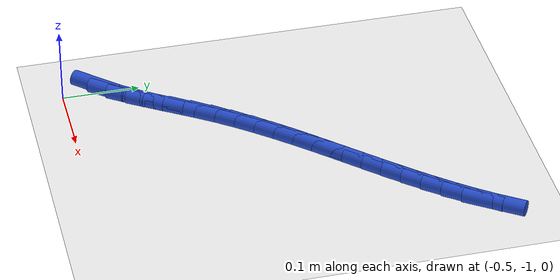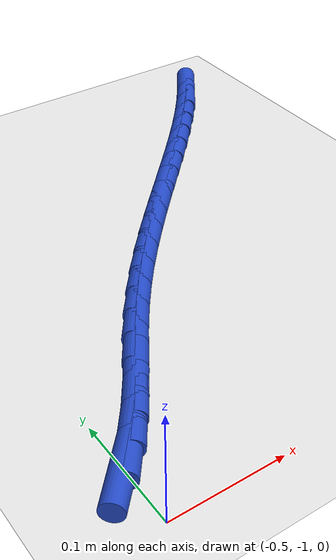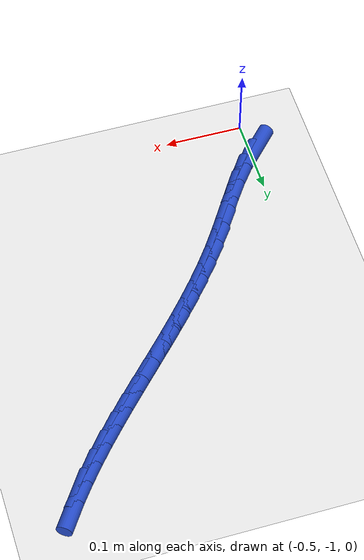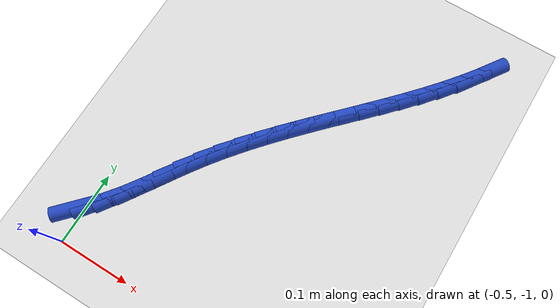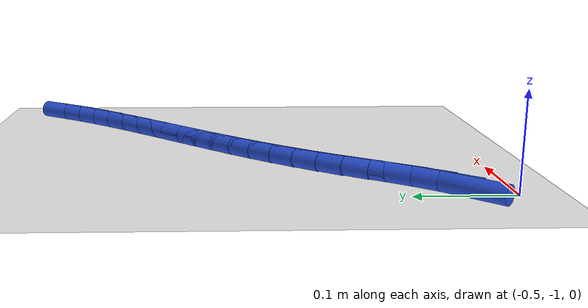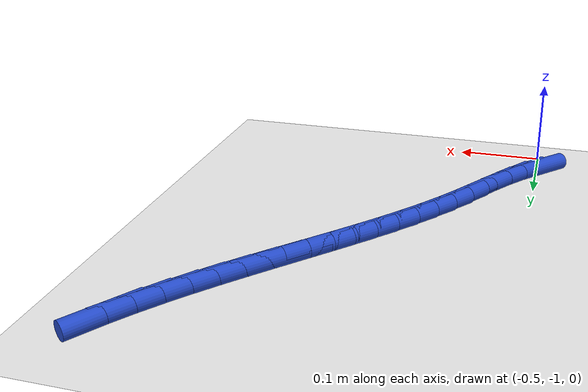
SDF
<sdf version="1.6">
 <world name="default">
  <model name="ground_plane">
   <static>1</static>
   <link name="link">
    <collision name="collision">
     <geometry><plane><normal>0 0 1</normal><size>100 100</size></plane></geometry>
     <surface><friction><ode><mu>100</mu><mu2>50</mu2></ode></friction></surface>
    </collision>
    <visual name="visual">
     <cast_shadows>0</cast_shadows>
     <geometry><plane><normal>0 0 1</normal><size>100 100</size></plane></geometry>
     <material>
      <script><uri>file://media/materials/scripts/gazebo.material</uri><name>Gazebo/WhiteGlow</name></script>
     </material>
    </visual>
   </link>
  </model>
  <model name="line">
   <link name="link_200">
    <pose>-0.501838944182624 -0.9503587757110289 0.01 0 1.57 0.8195275330311237</pose>
    <collision name="collision">
     <geometry><cylinder><radius>0.01</radius><length>0.08</length></cylinder></geometry>
    </collision>
    <visual name="visual">
     <material>
      <script><name>Gazebo/Blue</name><uri>file://media/materials/scripts/gazebo.material</uri></script>
     </material>
     <geometry><cylinder><radius>0.01</radius><length>0.08</length></cylinder></geometry>
    </visual>
   </link>
   <link name="link_201">
    <pose>-0.48352572421980944 -0.930750827435596 0.01 0 1.57 0.9082212085602007</pose>
    <collision name="collision">
     <geometry><cylinder><radius>0.01</radius><length>0.08</length></cylinder></geometry>
    </collision>
    <visual name="visual">
     <material>
      <script><name>Gazebo/Blue</name><uri>file://media/materials/scripts/gazebo.material</uri></script>
     </material>
     <geometry><cylinder><radius>0.01</radius><length>0.08</length></cylinder></geometry>
    </visual>
   </link>
   <link name="link_202">
    <pose>-0.46674401291026996 -0.9092424142806802 0.01 0 1.57 0.9656127699142116</pose>
    <collision name="collision">
     <geometry><cylinder><radius>0.01</radius><length>0.08</length></cylinder></geometry>
    </collision>
    <visual name="visual">
     <material>
      <script><name>Gazebo/Blue</name><uri>file://media/materials/scripts/gazebo.material</uri></script>
     </material>
     <geometry><cylinder><radius>0.01</radius><length>0.08</length></cylinder></geometry>
    </visual>
   </link>
   <link name="link_203">
    <pose>-0.4509629146733133 -0.8864298969664879 0.01 0 1.57 0.9937276670522839</pose>
    <collision name="collision">
     <geometry><cylinder><radius>0.01</radius><length>0.08</length></cylinder></geometry>
    </collision>
    <visual name="visual">
     <material>
      <script><name>Gazebo/Blue</name><uri>file://media/materials/scripts/gazebo.material</uri></script>
     </material>
     <geometry><cylinder><radius>0.01</radius><length>0.08</length></cylinder></geometry>
    </visual>
   </link>
   <link name="link_204">
    <pose>-0.435651533928247 -0.862909636213224 0.01 0 1.57 0.9940644964784116</pose>
    <collision name="collision">
     <geometry><cylinder><radius>0.01</radius><length>0.08</length></cylinder></geometry>
    </collision>
    <visual name="visual">
     <material>
      <script><name>Gazebo/Blue</name><uri>file://media/materials/scripts/gazebo.material</uri></script>
     </material>
     <geometry><cylinder><radius>0.01</radius><length>0.08</length></cylinder></geometry>
    </visual>
   </link>
   <link name="link_205">
    <pose>-0.4202789750943786 -0.8392779927410945 0.01 0 1.57 0.9675905631235886</pose>
    <collision name="collision">
     <geometry><cylinder><radius>0.01</radius><length>0.08</length></cylinder></geometry>
    </collision>
    <visual name="visual">
     <material>
      <script><name>Gazebo/Blue</name><uri>file://media/materials/scripts/gazebo.material</uri></script>
     </material>
     <geometry><cylinder><radius>0.01</radius><length>0.08</length></cylinder></geometry>
    </visual>
   </link>
   <link name="link_206">
    <pose>-0.40432583818544676 -0.8161190192287412 0.01 0 1.57 0.9291987799411688</pose>
    <collision name="collision">
     <geometry><cylinder><radius>0.01</radius><length>0.08</length></cylinder></geometry>
    </collision>
    <visual name="visual">
     <material>
      <script><name>Gazebo/Blue</name><uri>file://media/materials/scripts/gazebo.material</uri></script>
     </material>
     <geometry><cylinder><radius>0.01</radius><length>0.08</length></cylinder></geometry>
    </visual>
   </link>
   <link name="link_207">
    <pose>-0.3875739035747454 -0.7936943021782281 0.01 0 1.57 0.8953303697695674</pose>
    <collision name="collision">
     <geometry><cylinder><radius>0.01</radius><length>0.08</length></cylinder></geometry>
    </collision>
    <visual name="visual">
     <material>
      <script><name>Gazebo/Blue</name><uri>file://media/materials/scripts/gazebo.material</uri></script>
     </material>
     <geometry><cylinder><radius>0.01</radius><length>0.08</length></cylinder></geometry>
    </visual>
   </link>
   <link name="link_208">
    <pose>-0.37012810485895714 -0.771919436126707 0.01 0 1.57 0.8669492538754117</pose>
    <collision name="collision">
     <geometry><cylinder><radius>0.01</radius><length>0.08</length></cylinder></geometry>
    </collision>
    <visual name="visual">
     <material>
      <script><name>Gazebo/Blue</name><uri>file://media/materials/scripts/gazebo.material</uri></script>
     </material>
     <geometry><cylinder><radius>0.01</radius><length>0.08</length></cylinder></geometry>
    </visual>
   </link>
   <link name="link_209">
    <pose>-0.3521092726341187 -0.750692995097087 0.01 0 1.57 0.8441426941441754</pose>
    <collision name="collision">
     <geometry><cylinder><radius>0.01</radius><length>0.08</length></cylinder></geometry>
    </collision>
    <visual name="visual">
     <material>
      <script><name>Gazebo/Blue</name><uri>file://media/materials/scripts/gazebo.material</uri></script>
     </material>
     <geometry><cylinder><radius>0.01</radius><length>0.08</length></cylinder></geometry>
    </visual>
   </link>
   <link name="link_210">
    <pose>-0.33363823749626526 -0.7299135531122745 0.01 0 1.57 0.8269546605527704</pose>
    <collision name="collision">
     <geometry><cylinder><radius>0.01</radius><length>0.08</length></cylinder></geometry>
    </collision>
    <visual name="visual">
     <material>
      <script><name>Gazebo/Blue</name><uri>file://media/materials/scripts/gazebo.material</uri></script>
     </material>
     <geometry><cylinder><radius>0.01</radius><length>0.08</length></cylinder></geometry>
    </visual>
   </link>
   <link name="link_211">
    <pose>-0.3148358300414326 -0.7094796841951769 0.01 0 1.57 0.815406817499621</pose>
    <collision name="collision">
     <geometry><cylinder><radius>0.01</radius><length>0.08</length></cylinder></geometry>
    </collision>
    <visual name="visual">
     <material>
      <script><name>Gazebo/Blue</name><uri>file://media/materials/scripts/gazebo.material</uri></script>
     </material>
     <geometry><cylinder><radius>0.01</radius><length>0.08</length></cylinder></geometry>
    </visual>
   </link>
   <link name="link_212">
    <pose>-0.2958228808656563 -0.6892899623687018 0.01 0 1.57 0.809514778997156</pose>
    <collision name="collision">
     <geometry><cylinder><radius>0.01</radius><length>0.08</length></cylinder></geometry>
    </collision>
    <visual name="visual">
     <material>
      <script><name>Gazebo/Blue</name><uri>file://media/materials/scripts/gazebo.material</uri></script>
     </material>
     <geometry><cylinder><radius>0.01</radius><length>0.08</length></cylinder></geometry>
    </visual>
   </link>
   <link name="link_213">
    <pose>-0.2767202205649723 -0.669242961655757 0.01 0 1.57 0.8092992040925779</pose>
    <collision name="collision">
     <geometry><cylinder><radius>0.01</radius><length>0.08</length></cylinder></geometry>
    </collision>
    <visual name="visual">
     <material>
      <script><name>Gazebo/Blue</name><uri>file://media/materials/scripts/gazebo.material</uri></script>
     </material>
     <geometry><cylinder><radius>0.01</radius><length>0.08</length></cylinder></geometry>
    </visual>
   </link>
   <link name="link_214">
    <pose>-0.257648679735416 -0.6492372560792488 0.01 0 1.57 0.8147915960180133</pose>
    <collision name="collision">
     <geometry><cylinder><radius>0.01</radius><length>0.08</length></cylinder></geometry>
    </collision>
    <visual name="visual">
     <material>
      <script><name>Gazebo/Blue</name><uri>file://media/materials/scripts/gazebo.material</uri></script>
     </material>
     <geometry><cylinder><radius>0.01</radius><length>0.08</length></cylinder></geometry>
    </visual>
   </link>
   <link name="link_215">
    <pose>-0.23872908897302292 -0.6291714196620851 0.01 0 1.57 0.826034700842545</pose>
    <collision name="collision">
     <geometry><cylinder><radius>0.01</radius><length>0.08</length></cylinder></geometry>
    </collision>
    <visual name="visual">
     <material>
      <script><name>Gazebo/Blue</name><uri>file://media/materials/scripts/gazebo.material</uri></script>
     </material>
     <geometry><cylinder><radius>0.01</radius><length>0.08</length></cylinder></geometry>
    </visual>
   </link>
   <link name="link_216">
    <pose>-0.22008227887382964 -0.6089440264271743 0.01 0 1.57 0.8430772935585364</pose>
    <collision name="collision">
     <geometry><cylinder><radius>0.01</radius><length>0.08</length></cylinder></geometry>
    </collision>
    <visual name="visual">
     <material>
      <script><name>Gazebo/Blue</name><uri>file://media/materials/scripts/gazebo.material</uri></script>
     </material>
     <geometry><cylinder><radius>0.01</radius><length>0.08</length></cylinder></geometry>
    </visual>
   </link>
   <link name="link_217">
    <pose>-0.20182908003387137 -0.5884536503974227 0.01 0 1.57 0.8659630202133013</pose>
    <collision name="collision">
     <geometry><cylinder><radius>0.01</radius><length>0.08</length></cylinder></geometry>
    </collision>
    <visual name="visual">
     <material>
      <script><name>Gazebo/Blue</name><uri>file://media/materials/scripts/gazebo.material</uri></script>
     </material>
     <geometry><cylinder><radius>0.01</radius><length>0.08</length></cylinder></geometry>
    </visual>
   </link>
   <link name="link_218">
    <pose>-0.18409032304918377 -0.5675988655957379 0.01 0 1.57 0.8947129762638028</pose>
    <collision name="collision">
     <geometry><cylinder><radius>0.01</radius><length>0.08</length></cylinder></geometry>
    </collision>
    <visual name="visual">
     <material>
      <script><name>Gazebo/Blue</name><uri>file://media/materials/scripts/gazebo.material</uri></script>
     </material>
     <geometry><cylinder><radius>0.01</radius><length>0.08</length></cylinder></geometry>
    </visual>
   </link>
   <link name="link_219">
    <pose>-0.16698683851580254 -0.5462782460450274 0.01 0 1.57 0.9293020059241961</pose>
    <collision name="collision">
     <geometry><cylinder><radius>0.01</radius><length>0.08</length></cylinder></geometry>
    </collision>
    <visual name="visual">
     <material>
      <script><name>Gazebo/Blue</name><uri>file://media/materials/scripts/gazebo.material</uri></script>
     </material>
     <geometry><cylinder><radius>0.01</radius><length>0.08</length></cylinder></geometry>
    </visual>
   </link>
   <link name="link_220">
    <pose>-0.15063945702976345 -0.5243903657681986 0.01 0 1.57 0.9696294729607446</pose>
    <collision name="collision">
     <geometry><cylinder><radius>0.01</radius><length>0.08</length></cylinder></geometry>
    </collision>
    <visual name="visual">
     <material>
      <script><name>Gazebo/Blue</name><uri>file://media/materials/scripts/gazebo.material</uri></script>
     </material>
     <geometry><cylinder><radius>0.01</radius><length>0.08</length></cylinder></geometry>
    </visual>
   </link>
  </model>
 </world>
</sdf>
